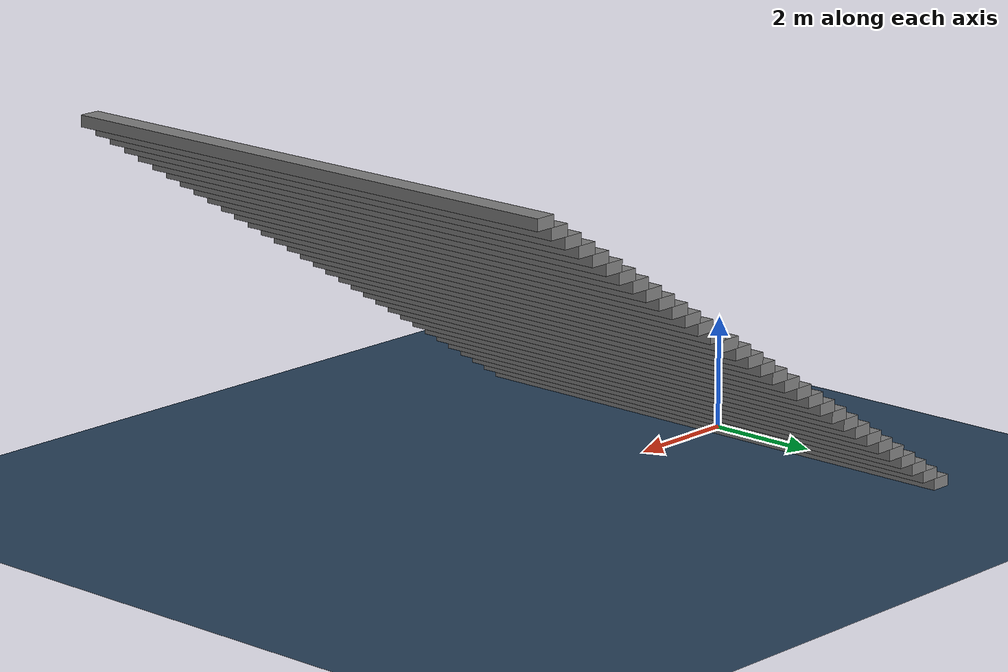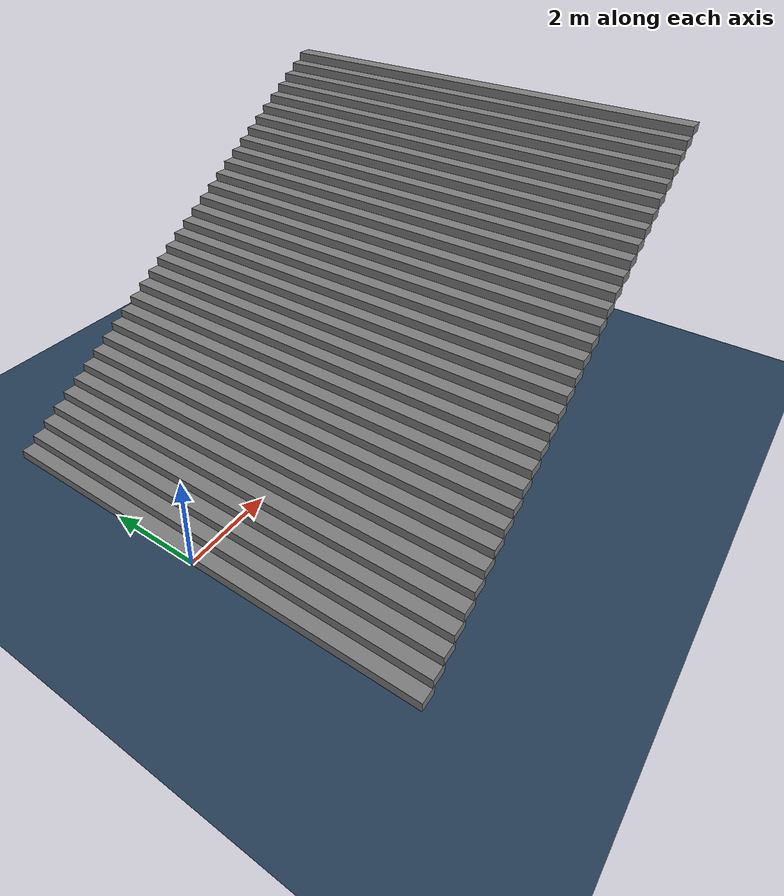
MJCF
<mujoco model="stairs_up_7">
  <!-- Terrain Type: stairs_up, Level: 7, Stairs step height: 0.2000 -->
  <statistic center="0 0 0.1" extent="0.8" />
  <visual>
    <headlight diffuse="0.6 0.6 0.6" ambient="0.3 0.3 0.3" specular="0 0 0" />
    <rgba haze="0.15 0.25 0.35 1" />
    <global azimuth="-130" elevation="-20" />
  </visual>
  <asset>
    <texture type="skybox" builtin="gradient" rgb1="0.3 0.5 0.7" rgb2="0 0 0" width="512" height="3072" />
    <texture type="2d" name="groundplane" builtin="checker" mark="edge" rgb1="0.2 0.3 0.4" rgb2="0.1 0.2 0.3" markrgb="0.8 0.8 0.8" width="300" height="300" />
    <material name="groundplane" texture="groundplane" texuniform="true" texrepeat="5 5" reflectance="0.0" />
  </asset>
  <worldbody>
    <light pos="0 0 1.5" dir="0 0 -1" directional="true" />
    <geom name="floor" size="0 0 0.05" type="plane" material="groundplane" />
    <geom pos="0.155 0.0 0.1" type="box" size="0.186 5.0 0.1" quat="1.0 0.0 0.0 0.0" />
    <geom pos="0.46499999999999997 0.0 0.30000000000000004" type="box" size="0.186 5.0 0.1" quat="1.0 0.0 0.0 0.0" />
    <geom pos="0.7749999999999999 0.0 0.5" type="box" size="0.186 5.0 0.1" quat="1.0 0.0 0.0 0.0" />
    <geom pos="1.085 0.0 0.7" type="box" size="0.186 5.0 0.1" quat="1.0 0.0 0.0 0.0" />
    <geom pos="1.395 0.0 0.8999999999999999" type="box" size="0.186 5.0 0.1" quat="1.0 0.0 0.0 0.0" />
    <geom pos="1.705 0.0 1.0999999999999999" type="box" size="0.186 5.0 0.1" quat="1.0 0.0 0.0 0.0" />
    <geom pos="2.015 0.0 1.2999999999999998" type="box" size="0.186 5.0 0.1" quat="1.0 0.0 0.0 0.0" />
    <geom pos="2.325 0.0 1.4999999999999998" type="box" size="0.186 5.0 0.1" quat="1.0 0.0 0.0 0.0" />
    <geom pos="2.6350000000000002 0.0 1.6999999999999997" type="box" size="0.186 5.0 0.1" quat="1.0 0.0 0.0 0.0" />
    <geom pos="2.9450000000000003 0.0 1.8999999999999997" type="box" size="0.186 5.0 0.1" quat="1.0 0.0 0.0 0.0" />
    <geom pos="3.2550000000000003 0.0 2.0999999999999996" type="box" size="0.186 5.0 0.1" quat="1.0 0.0 0.0 0.0" />
    <geom pos="3.5650000000000004 0.0 2.3" type="box" size="0.186 5.0 0.1" quat="1.0 0.0 0.0 0.0" />
    <geom pos="3.8750000000000004 0.0 2.5" type="box" size="0.186 5.0 0.1" quat="1.0 0.0 0.0 0.0" />
    <geom pos="4.1850000000000005 0.0 2.7" type="box" size="0.186 5.0 0.1" quat="1.0 0.0 0.0 0.0" />
    <geom pos="4.495 0.0 2.9000000000000004" type="box" size="0.186 5.0 0.1" quat="1.0 0.0 0.0 0.0" />
    <geom pos="4.805 0.0 3.1000000000000005" type="box" size="0.186 5.0 0.1" quat="1.0 0.0 0.0 0.0" />
    <geom pos="5.114999999999999 0.0 3.3000000000000007" type="box" size="0.186 5.0 0.1" quat="1.0 0.0 0.0 0.0" />
    <geom pos="5.424999999999999 0.0 3.500000000000001" type="box" size="0.186 5.0 0.1" quat="1.0 0.0 0.0 0.0" />
    <geom pos="5.7349999999999985 0.0 3.700000000000001" type="box" size="0.186 5.0 0.1" quat="1.0 0.0 0.0 0.0" />
    <geom pos="6.044999999999998 0.0 3.9000000000000012" type="box" size="0.186 5.0 0.1" quat="1.0 0.0 0.0 0.0" />
    <geom pos="6.354999999999998 0.0 4.100000000000001" type="box" size="0.186 5.0 0.1" quat="1.0 0.0 0.0 0.0" />
    <geom pos="6.664999999999997 0.0 4.300000000000002" type="box" size="0.186 5.0 0.1" quat="1.0 0.0 0.0 0.0" />
    <geom pos="6.974999999999997 0.0 4.500000000000002" type="box" size="0.186 5.0 0.1" quat="1.0 0.0 0.0 0.0" />
    <geom pos="7.284999999999997 0.0 4.700000000000002" type="box" size="0.186 5.0 0.1" quat="1.0 0.0 0.0 0.0" />
    <geom pos="7.594999999999996 0.0 4.900000000000002" type="box" size="0.186 5.0 0.1" quat="1.0 0.0 0.0 0.0" />
    <geom pos="7.904999999999996 0.0 5.100000000000002" type="box" size="0.186 5.0 0.1" quat="1.0 0.0 0.0 0.0" />
    <geom pos="8.214999999999996 0.0 5.3000000000000025" type="box" size="0.186 5.0 0.1" quat="1.0 0.0 0.0 0.0" />
    <geom pos="8.524999999999997 0.0 5.500000000000003" type="box" size="0.186 5.0 0.1" quat="1.0 0.0 0.0 0.0" />
    <geom pos="8.834999999999997 0.0 5.700000000000003" type="box" size="0.186 5.0 0.1" quat="1.0 0.0 0.0 0.0" />
    <geom pos="9.144999999999998 0.0 5.900000000000003" type="box" size="0.186 5.0 0.1" quat="1.0 0.0 0.0 0.0" />
    <geom pos="9.454999999999998 0.0 6.100000000000003" type="box" size="0.186 5.0 0.1" quat="1.0 0.0 0.0 0.0" />
    <geom pos="9.764999999999999 0.0 6.300000000000003" type="box" size="0.186 5.0 0.1" quat="1.0 0.0 0.0 0.0" />
    <geom pos="10.075 0.0 6.5000000000000036" type="box" size="0.186 5.0 0.1" quat="1.0 0.0 0.0 0.0" />
  </worldbody>
</mujoco>
